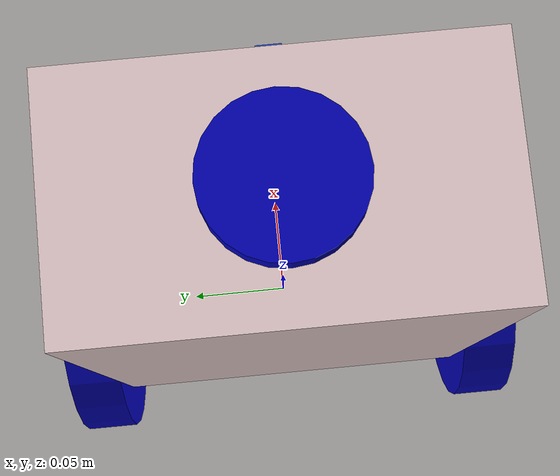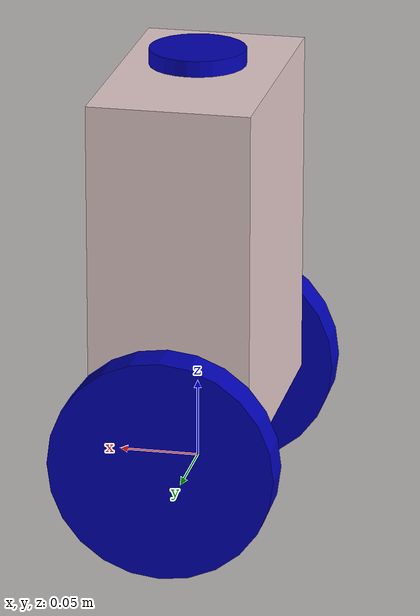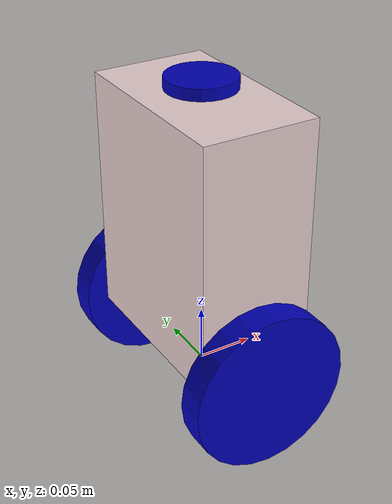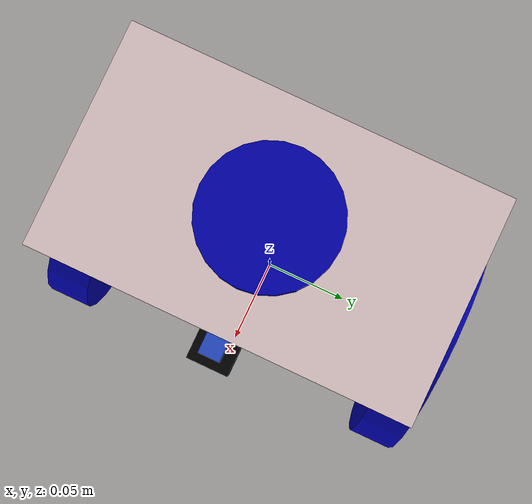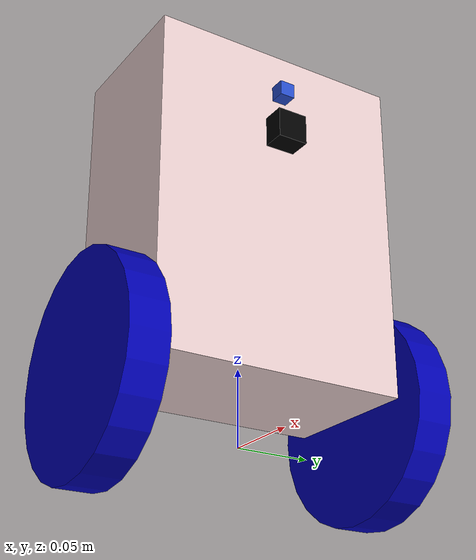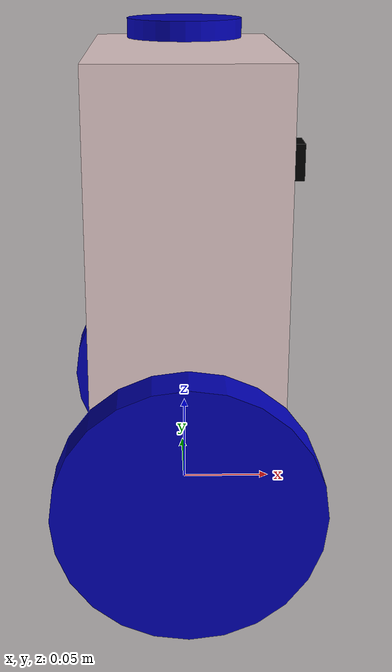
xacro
<?xml version="1.0"?>
<robot xmlns:xacro="http://www.ros.org/wiki/xacro"  name="twbot_demo">

    <xacro:include filename="twbot.xacro" />
    <xacro:include filename="ros2_control_torque.xacro"/>
    <xacro:include filename="IMU_sensor.xacro"/>
    <xacro:include filename="camera.xacro"/>
    <xacro:include filename="lidar.xacro"/>

</robot>

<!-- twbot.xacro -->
<robot xmlns:xacro="http://www.ros.org/wiki/xacro">
<xacro:include filename="inertial_macros.xacro" />

<!--materials-->

<material name="Blue">
    <color rgba="0 0 0.7 1" />
</material>
<material name="Green">
    <color rgba="0 0.7 0.2 1" />
</material>
<material name="Red">
    <color rgba="0.7 0.1 0.1 1" />
</material>
<material name="Grey">
    <color rgba="0.5 0.5 0.5 1" />
</material>
<material name="White">
    <color rgba="0.9 0.8 0.8 1" />
</material>
<material name="Black">
    <color rgba="0 0 0 1" />
</material>

<!--link and joints-->
<!--        pour ce projet base_link = chassis       -->

<link name="base_footprint"></link>
<joint name="base_footprin_joint" type="fixed">
    <parent link="base_footprint"/>
    <child link="base_link"/>
    <origin xyz="0 0 0.1425" rpy="0 0 0" />
</joint>

<!--base_link-->

<link name="base_link">
    <visual>
        <origin xyz="0 0 0" rpy="0 0 0" />
        <geometry>
            <box size="0.1 0.17 0.22" />
        </geometry>
        <material name="White">
        </material>
    </visual>
    <collision>
        <origin xyz="0 0 0" rpy="0 0 0" />
        <geometry>
            <box size="0.1 0.17 0.22" />
        </geometry>
    </collision>

    <xacro:inertial_box mass="1.0" x="0.1" y="0.17" z="0.22" >
        <origin xyz="0 0 0" rpy="0 0 0" />
    </xacro:inertial_box>
</link>
<gazebo reference="base_link">
  <material>Gazebo/Red</material>
</gazebo>

<!--            wheels           -->

<!--Right_Wheel_link-->
<link name="RightWheel_link">
    <visual>
        <origin xyz="0 0 0" rpy="1.57 0 0" />
        <geometry>
            <cylinder radius="0.07" length="0.025" />
        </geometry>
        <material name="Blue">
        </material>
    </visual>
    <collision>
        <origin xyz="0 0 0" rpy="1.57 0 0" />
        <geometry>
            <cylinder radius="0.07" length="0.025" />
        </geometry>
    </collision>

    <xacro:inertial_cylinder mass="0.5" radius="0.07" length="0.025" >
        <origin xyz="0 0 0" rpy="0 0 0" />
    </xacro:inertial_cylinder>
</link>
<gazebo reference="RightWheel_link">
  <material>Gazebo/Green</material>
  <mu1>1.0</mu1>
  <mu2>1.0</mu2>
</gazebo>

<!--Right_Wheel_joint-->
<joint name="base_Rwheel_joint" type="continuous">
    <parent link="base_link" />
    <child link="RightWheel_link" />
    <origin xyz="0 -0.0975 -0.11" rpy="0 0 0" />
    <axis xyz="0 1 0" />
    <dynamics damping="0.5" friction="0.01"/> <!--hadi friction t3 joint ( tsma moteur mchi les roues )-->
    <limit effort="100.0" velocity="100.0"/>
</joint>

<!--Left_Wheel_link-->
<link name="LeftWheel_link">
    <visual>
        <origin xyz="0 0 0" rpy="1.57 0 0" />
        <geometry>
            <cylinder radius="0.07" length="0.025" />
        </geometry>
        <material name="Blue">
        </material>
    </visual>
    <collision>
        <origin xyz="0 0 0" rpy="1.57 0 0" />
        <geometry>
            <cylinder radius="0.07" length="0.025" />
        </geometry>
    </collision>

    <xacro:inertial_cylinder mass="0.5" radius="0.07" length="0.025" >
        <origin xyz="0 0 0" rpy="0 0 0" />
    </xacro:inertial_cylinder>
</link>
<gazebo reference="LeftWheel_link">
  <material>Gazebo/Green</material>
  <mu1>1.0</mu1>
  <mu2>1.0</mu2>
</gazebo>

<!--Right_Wheel_joint-->
<joint name="base_Lwheel_joint" type="continuous">
    <parent link="base_link" />
    <child link="LeftWheel_link" />
    <origin xyz="0 0.0975 -0.11" rpy="0 0 0" />
    <axis xyz="0 1 0" />
    <dynamics damping="0.5" friction="0.01"/>
    <limit effort="100.0" velocity="100.0"/>
</joint>

</robot>

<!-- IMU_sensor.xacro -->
<robot xmlns:xacro="http://www.ros.org/wiki/xacro">
<xacro:include filename="inertial_macros.xacro" />

    <link name="IMU_link">
        <visual>
            <origin xyz="0 0 0" rpy="0 0 0" />
            <geometry>
                <box size="0.02 0.02 0.02" />
            </geometry>
            <material name="Black"></material>
        </visual>
        <collision>
            <origin xyz="0 0 0" rpy="0 0 0" />
            <geometry>
                <box size="0.01 0.01 0.01" />
            </geometry>
        </collision>
        <xacro:inertial_box mass="0.0001" x="0.01" y="0.01" z="0.01" >
            <origin xyz="0 0 0" rpy="0 0 0" />
        </xacro:inertial_box>
    </link>
    <gazebo reference="IMU_link">
      <material>Gazebo/Black</material>
    </gazebo>

<!--joint IMU-->
<joint name="base_IMU_joint" type="fixed">
    <parent link="base_link" />
    <child link="IMU_link" />
    <origin xyz="0.055 0 0.05" rpy="0 0 0" />
</joint>

<!--plugin of the sensor -->

 <gazebo reference="IMU_link">
    <gravity>true</gravity>
    <sensor name="imu_sensor" type="imu">
      <always_on>1</always_on>
      <update_rate>1000</update_rate>
      <visualize>true</visualize>
      <topic>/imu</topic>

      <!-- nizdo hadi bach y3rf ama link rah tab3 lih capteur-->
      <gz_frame_id>IMU_link</gz_frame_id>
      <imu>
        <angular_velocity>true</angular_velocity>
        <linear_acceleration>true</linear_acceleration>
        <orientation>true</orientation>
      </imu>
    </sensor>
  </gazebo>

</robot>

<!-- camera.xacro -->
<robot xmlns:xacro="http://www.ros.org/wiki/xacro">

    <link name="camera_link">
      <visual>
        <origin xyz="0 0 0" rpy="0 0 0"/>
        <geometry>
          <box size="0.01 0.01 0.01" />
        </geometry>
        <material name="blue"/>
      </visual>
    </link>
    <!--joint camera-->
    <joint name="base_camera_joint" type="fixed">
        <parent link="base_link" />
        <child link="camera_link" />
        <origin xyz="0.055 0 0.08" rpy="0 0 0" />
    </joint>
    <!--optical cam (cam vitruel la cam par defaut Ã  un repere inversÃ© donc nrj3oh kima can b had link)-->
    <joint name="camera_optical_joint" type="fixed">
        <parent link="camera_link" />
        <child link="camera_optical_link" />
        <origin xyz="0 0 0" rpy="-1.57 0 -1.57" />
    </joint>
    <link name="camera_optical_link"></link>

<!--plugin nrml-->
    <gazebo reference="camera_link">
      <material>Gazebo/Black</material>
        <sensor name="camera" type="camera">
            <pose> 0 0 0 0 0 0 </pose>
            <visualize>true</visualize>
            <update_rate>10</update_rate>

            <topic>/camera/image_raw</topic>

            <!-- The topic for camera info (intrinsic matrix) -->
            <camera_info_topic>/camera/camera_info</camera_info_topic>

            <camera>
                <horizontal_fov>1.089</horizontal_fov> <!-- ~60 degrees -->
                <image>
                    <width>640</width>
                    <height>480</height>
                    <format>R8G8B8</format>
                </image>
                <clip>
                    <near>0.05</near>
                    <far>8.0</far>
                </clip>
            </camera>

            <gz_frame_id>camera_optical_link</gz_frame_id>
        </sensor>

        <always_on>1</always_on>
        <visualize>1</visualize>
    </gazebo>

</robot>

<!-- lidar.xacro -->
<robot xmlns:xacro="http://www.ros.org/wiki/xacro">

<link name="lidar_link">
  <visual>
    <origin xyz="0 0 0" rpy="0 0 0"/>
    <geometry>
      <cylinder radius="0.03" length="0.01" />
    </geometry>
    <material name="Blue"/>
  </visual>
  <collision>
     <origin xyz="0 0 0" rpy="0 0 0" />
      <geometry>
        <cylinder radius="0.03" length="0.01" />
      </geometry>
  </collision>
  <xacro:inertial_cylinder mass="0.3" radius="0.03" length="0.01" >
    <origin xyz="0 0 0" rpy="0 0 0" />
  </xacro:inertial_cylinder>
</link>
<gazebo reference="lidar_link">
  <material>Gazebo/Yellow</material>
</gazebo>
<!--joint lidar-->
<joint name="base_lidar_joint" type="fixed">
    <parent link="base_link" />
    <child link="lidar_link" />
    <origin xyz="0 0 0.12" rpy="0 0 0" />
</joint>
<!--engine deja rah world.sdf-->
    <!--plugin nrml-->
    <gazebo reference="lidar_link">
        <material>Gazebo/Pink</material>

        <sensor name="lidar_link" type="gpu_lidar">
            <pose> 0 0 0.11 0 0 0 </pose>
            <visualize>true</visualize>
            <update_rate>30</update_rate>
            <gz_frame_id>lidar_link</gz_frame_id>
            <topic>/scan</topic>
            <lidar>
                <scan>
                    <horizontal>
                        <samples>360</samples>
                        <min_angle>-3.14</min_angle>
                        <max_angle>3.14</max_angle>
                    </horizontal>
                </scan>
                <range>
                    <min>0.2</min>
                    <max>12</max>
                </range>
            </lidar>

            <always_on>1</always_on>
            <visualize>1</visualize>
        </sensor>
    </gazebo>

</robot>
